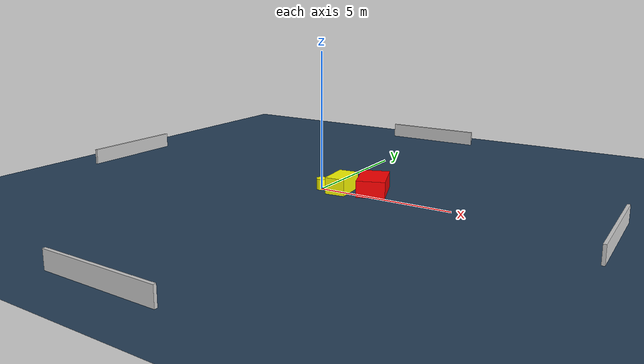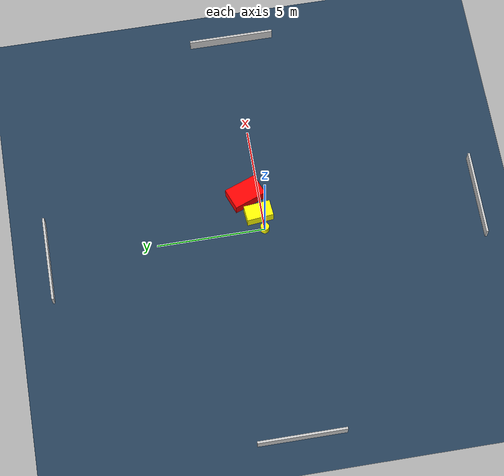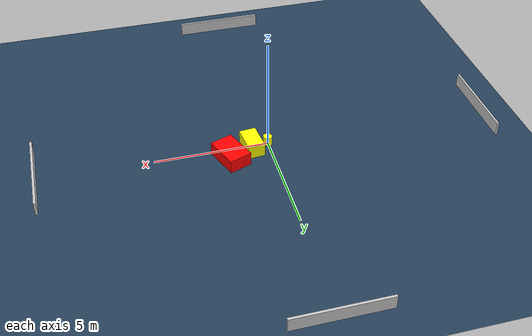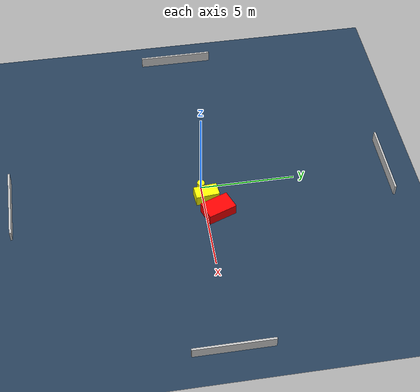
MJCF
<?xml version="1.0" ?>
<mujoco model="generated_environment">
  <option timestep="0.01" integrator="RK4" cone="elliptic"/>
  <default>
    <geom density="1"/>
  </default>
  <asset>
    <texture builtin="gradient" height="3072" name="skybox" rgb1="0.3 0.5 0.7" rgb2="0 0 0" type="skybox" width="512"/>
    <texture builtin="checker" height="300" name="groundplane" rgb1="0.2 0.3 0.4" rgb2="0.1 0.2 0.3" type="2d" width="300"/>
    <material name="groundplane" reflectance="0.2" texrepeat="5 5" texture="groundplane"/>
  </asset>
  <worldbody>
    <light dir="0 0 -1" directional="true" pos="0 0 1.5"/>
    <geom condim="3" friction="0.5 0.005 0.001" material="groundplane" name="floor" pos="0 0 0" size="0 0 0.05" type="plane"/>
    <body name="walls">
      <geom name="wall_1" condim="4" pos="-10.0 0.0 0.3" rgba="0.800000011920929 0.800000011920929 0.800000011920929 1.0" size="0.05 2.0 0.3" type="box"/>
      <geom name="wall_2" condim="4" pos="10.0 0.0 0.3" rgba="0.800000011920929 0.800000011920929 0.800000011920929 1.0" size="0.05 2.0 0.3" type="box"/>
      <geom name="wall_3" condim="4" pos="0.0 -10.0 0.3" rgba="0.800000011920929 0.800000011920929 0.800000011920929 1.0" size="2.0 0.05 0.3" type="box"/>
      <geom name="wall_4" condim="4" pos="0.0 10.0 0.3" rgba="0.800000011920929 0.800000011920929 0.800000011920929 1.0" size="2.0 0.05 0.3" type="box"/>
    </body>
    <body name="robot">
      <joint name="joint_x" type="slide" pos="0 0 0" axis="1 0 0"/>
      <joint name="joint_y" type="slide" pos="0 0 0" axis="0 1 0"/>
      <geom name="robot" type="cylinder" pos="0.0 0.0 0.2" size="0.2 0.2 0.0" mass="5.0" friction="1.0 0.005 0.0001" condim="4" rgba="1.0 1.0 0.0 1.0"/>
    </body>
    <body name="obstacle_1_movable">
      <geom name="obstacle_1_movable" condim="4" pos="0.7498512411174943 0.1736445478641865 0.3" euler="0 0 185.61373357563667" friction="0.0 0.005 0.001" rgba="1.0 1.0 0.0 1.0" size="0.368084789398365 0.6180684408053434 0.3" type="box" mass="0.1"/>
      <joint type="free"/>
    </body>
    <body name="obstacle_2_static">
      <geom name="obstacle_2_static" condim="4" pos="1.787175415755119 0.6252642257601347 0.3" euler="0 0 20.869132598761038" friction="0.0 0.005 0.001" rgba="1.0 0.0 0.0 1.0" size="0.5109638026851906 0.7729756815752755 0.3" type="box"/>
    </body>
  </worldbody>
  <actuator>
    <motor name="actuator_x" joint="joint_x" gear="1" ctrlrange="-1 1"/>
    <motor name="actuator_y" joint="joint_y" gear="1" ctrlrange="-1 1"/>
  </actuator>
</mujoco>
